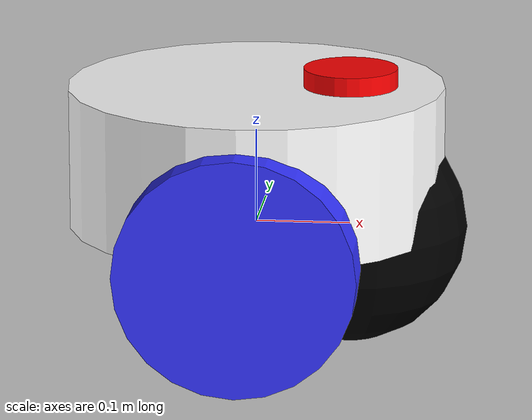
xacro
<?xml version="1.0"?>
<robot xmlns:xacro="http://www.ros.org/wiki/xacro"  name="robot">

    <xacro:arg name="use_ros2_control" default="true"/>
    <xacro:arg name="sim_mode" default="false"/>

    <xacro:include filename="robot_core.xacro" />

    <xacro:if value="$(arg use_ros2_control)">
        <xacro:include filename="ros2_control.xacro" />
    </xacro:if>
    <xacro:unless value="$(arg use_ros2_control)">
        <xacro:include filename="gazebo_control.xacro" />
    </xacro:unless>

    <xacro:include filename="lidar.xacro" />

</robot>

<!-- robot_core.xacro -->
<robot xmlns:xacro="http://www.ros.org/wiki/xacro"  >

    <xacro:include filename="inertial_macros.xacro" />

    <material name="white">
        <color rgba="1 1 1 1" />
    </material>

    <material name="orange">
        <color rgba="1 0.3 0.1 1"/>
    </material>

    <material name="blue">
        <color rgba="0.2 0.2 1 1"/>
    </material>

    <material name="black">
        <color rgba="0 0 0 1"/>
    </material>

    <material name="red">
        <color rgba="1 0 0 1"/>
    </material>

    <!-- BASE LINK -->

    <link name="base_link">

    </link>

    <!-- BASE FOOTPRINT LINK -->

    <joint name="base_footprint_joint" type="fixed">
        <parent link="base_link"/>
        <child link="base_footprint"/>
        <origin xyz="0 0 0" rpy="0 0 0"/>
    </joint>

    <link name="base_footprint">
    </link>

    <!-- CHASSIS LINK -->

    <joint name="chassis_joint" type="fixed">
        <parent link="base_link"/>
        <child link="chassis"/>
        <origin xyz="0 0 0" rpy="0 0 0"/>
    </joint>

    <link name="chassis">
        <visual>
            <origin xyz="0 0 0.075"/>
            <geometry>
                <cylinder radius="0.2" length="0.15"/>
            </geometry>
            <material name="white"/>
        </visual>
        <collision>
            <origin xyz="0 0 0.125"/>
            <geometry>
                <cylinder radius="0.2" length="0.15"/>
            </geometry>
        </collision>
        <xacro:inertial_cylinder mass="0.5" length="0.15" radius="0.5">
            <origin xyz="0.0 0.0 0.0" rpy="0.0 0.0 0.0"/>
        </xacro:inertial_cylinder>
    </link>
    <gazebo reference="chassis">
        <material>Gazebo/White</material>
    </gazebo>

    <!-- LEFT WHEEL LINK -->

    <joint name="left_wheel_joint" type="continuous">
        <parent link="base_link"/>
        <child link="left_wheel"/>
        <origin xyz="0 0.2025 0" rpy="-${pi/2} 0.0 0.0"/>
        <axis xyz="0 0 1"/>
    </joint>

    <link name="left_wheel">
        <visual>
            <geometry>
                <cylinder radius="0.125" length="0.06"/>
            </geometry>
            <material name="blue"/>
        </visual>
        <collision>
            <geometry>
                <sphere radius="0.125" />
            </geometry>
        </collision>
        <xacro:inertial_cylinder mass="0.1" length="0.06" radius="0.125">
            <origin xyz="0 0 0" rpy="0 0 0"/>
        </xacro:inertial_cylinder>
    </link>
    <gazebo reference="left_wheel">
        <material>Gazebo/Blue</material>
    </gazebo>

    <!-- RIGHT WHEEL LINK -->

    <joint name="right_wheel_joint" type="continuous">
        <parent link="base_link"/>
        <child link="right_wheel"/>
        <origin xyz="0 -0.2025 0" rpy="${pi/2} 0 0"/>
        <axis xyz="0 0 -1"/>

    </joint>

    <link name="right_wheel">
        <visual>
           <geometry>
                <cylinder radius="0.125" length="0.06"/>
            </geometry>
            <material name="blue"/>
        </visual>
        <collision>
           <geometry>
                <sphere radius="0.125"/>
            </geometry>
        </collision>
        <xacro:inertial_cylinder mass="0.1" length="0.06" radius="0.125">
            <origin xyz="0 0 0" rpy="0 0 0"/>
        </xacro:inertial_cylinder>
    </link>
    <gazebo reference="right_wheel">
        <material>Gazebo/Blue</material>
    </gazebo>

    <!-- CASTER WHEEL LINK -->

    <joint name="caster_wheel_joint" type="fixed">
        <parent link="chassis"/>
        <child link="caster_wheel"/>
        <origin xyz="0.10 0 0" rpy="0 0 0"/>

    </joint>

    <link name="caster_wheel">
        <visual>
            <geometry>
                <sphere radius="0.125"/>
            </geometry>
            <material name="black"/>
        </visual>
        <collision>
            <geometry>
                <sphere radius="0.125"/>
            </geometry>
        </collision>
        <xacro:inertial_sphere mass="1" radius="0.125">
            <origin xyz="0 0 0" rpy="0 0 0"/>
        </xacro:inertial_sphere>
    </link>
    <gazebo reference="caster_wheel">
        <material>Gazebo/Black</material>
        <mu1 value="0.001"/>
        <mu2 value="0.001"/>
    </gazebo>

</robot>

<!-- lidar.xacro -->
<robot xmlns:xacro="http://www.ros.org/wiki/xacro">

    <joint name="laser_joint" type="fixed">
        <parent link="chassis"/>
        <child link="laser_frame"/>
        <origin xyz="0.1 0 0.15" rpy="0 0 0"/>
    </joint>

    <link name="laser_frame">
        <visual>
            <geometry>
                <cylinder radius="0.05" length="0.04"/>
            </geometry>
            <material name="red"/>
        </visual>
        <visual>
            <origin xyz="0 0 -0.05"/>
            <geometry>
                <cylinder radius="0.01" length="0.1"/>
            </geometry>
            <material name="red"/>
        </visual>
        <collision>
            <geometry>
                <cylinder radius="0.05" length="0.04"/>
            </geometry>
        </collision>
        <xacro:inertial_cylinder mass="0.1" length="0.04" radius="0.125">
            <origin xyz="0 0 0" rpy="0 0 0"/>
        </xacro:inertial_cylinder>
    </link>

    <gazebo reference="laser_frame">
        <material>Gazebo/Red</material>

        <sensor name="laser" type="ray">
            <pose> 0 0 0 0 0 0 </pose>
            <visualize>true</visualize>
            <update_rate>10</update_rate>
            <ray>
                <scan>
                    <horizontal>
                        <samples>360</samples>
                        <min_angle>-3.14</min_angle>
                        <max_angle>3.14</max_angle>
                    </horizontal>
                </scan>
                <range>
                    <min>0.5</min>
                    <max>12</max>
                </range>
            </ray>
            <plugin name="laser_controller" filename="libgazebo_ros_ray_sensor.so">
                <ros>
                    <argument>~/out:=scan</argument>
                </ros>
                <output_type>sensor_msgs/LaserScan</output_type>
                <frame_name>laser_frame</frame_name>
            </plugin>
        </sensor>
    </gazebo>

</robot>
